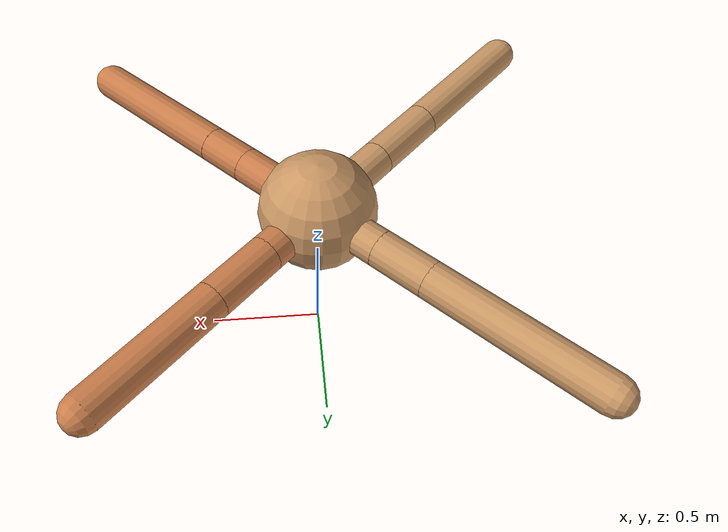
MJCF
<mujoco model="ant">
  <compiler angle="degree" coordinate="local" inertiafromgeom="true" />
  <option integrator="RK4" timestep="0.01" />
  <custom>
    <numeric data="0.0 0.0 0.55 1.0 0.0 0.0 0.0 0.0 1.0 0.0 -1.0 0.0 -1.0 0.0 1.0" name="init_qpos" />
  </custom>
  <default>
    <joint armature="1" damping="1" limited="true" />
    <geom conaffinity="0" condim="3" density="5.0" friction="1.5 0.1 0.1" margin="0.01" rgba="0.8 0.6 0.4 1" />
  </default>
  <worldbody>
    <body name="torso" pos="0 0 0.75">
      <geom name="torso_geom" pos="0 0 0" size="0.25" type="sphere" />

      <body name="front_left_leg" pos="0 0 0">
        <geom fromto="0.0 0.0 0.0 0.2204954303803889 0.2204954303803889 0.0" name="aux_1_geom" size="0.08" type="capsule" rgba=".8 .5 .3 1" />
        <body name="aux_1" pos="0.2204954303803889 0.2204954303803889 0.0">
          <joint axis="0 0 1" name="hip_1" pos="0.0 0.0 0.0" range="-40 40" type="hinge" />
          <geom fromto="0.0 0.0 0.0 0.2046021297252291 0.2046021297252291 0.0" name="left_leg_geom" size="0.08" type="capsule" rgba=".8 .5 .3 1" />
          <body pos="0.2046021297252291 0.2046021297252291 0.0" name="front_left_foot">
            <joint axis="-1 1 0" name="ankle_1" pos="0.0 0.0 0.0" range="30 100" type="hinge" />
            <geom fromto="0.0 0.0 0.0 0.4304403684930478 0.4304403684930478 0.0" name="left_ankle_geom" size="0.08" type="capsule" rgba=".8 .5 .3 1" />
          </body>
        </body>
      </body>
      <body name="front_right_leg" pos="0 0 0">
        <geom fromto="0.0 0.0 0.0 -0.23019728959342345 0.23019728959342345 0.0" name="aux_2_geom" size="0.08" type="capsule" />
        <body name="aux_2" pos="-0.23019728959342345 0.23019728959342345 0.0">
          <joint axis="0 0 1" name="hip_2" pos="0.0 0.0 0.0" range="-40 40" type="hinge" />
          <geom fromto="0.0 0.0 0.0 -0.16825772487446422 0.16825772487446422 0.0" name="right_leg_geom" size="0.08" type="capsule" />
          <body pos="-0.16825772487446422 0.16825772487446422 0.0" name="front_right_foot">
            <joint axis="1 1 0" name="ankle_2" pos="0.0 0.0 0.0" range="-100 -30" type="hinge" />
            <geom fromto="0.0 0.0 0.0 -0.5353641492339032 0.5353641492339032 0.0" name="right_ankle_geom" size="0.08" type="capsule" />
          </body>
        </body>
      </body>
      <body name="left_back_leg" pos="0 0 0">
        <geom fromto="0.0 0.0 0.0 -0.28553923387048524 -0.28553923387048524 0.0" name="aux_3_geom" size="0.08" type="capsule" />
        <body name="aux_3" pos="-0.28553923387048524 -0.28553923387048524 0.0">
          <joint axis="0 0 1" name="hip_3" pos="0.0 0.0 0.0" range="-40 40" type="hinge" />
          <geom fromto="0.0 0.0 0.0 -0.23532495782115284 -0.23532495782115284 0.0" name="back_leg_geom" size="0.08" type="capsule" />
          <body pos="-0.23532495782115284 -0.23532495782115284 0.0" name="left_back_foot">
            <joint axis="-1 1 0" name="ankle_3" pos="0.0 0.0 0.0" range="-100 -30" type="hinge" />
            <geom fromto="0.0 0.0 0.0 -0.4723111038166627 -0.4723111038166627 0.0" name="third_ankle_geom" size="0.08" type="capsule" />
          </body>
        </body>
      </body>
      <body name="right_back_leg" pos="0 0 0">
        <geom fromto="0.0 0.0 0.0 0.28618244010414706 -0.28618244010414706 0.0" name="aux_4_geom" size="0.08" type="capsule" rgba=".8 .5 .3 1" />
        <body name="aux_4" pos="0.28618244010414706 -0.28618244010414706 0.0">
          <joint axis="0 0 1" name="hip_4" pos="0.0 0.0 0.0" range="-40 40" type="hinge" />
          <geom fromto="0.0 0.0 0.0 0.14483749122869613 -0.14483749122869613 0.0" name="rightback_leg_geom" size="0.08" type="capsule" rgba=".8 .5 .3 1" />
          <body pos="0.14483749122869613 -0.14483749122869613 0.0" name="right_back_foot">
            <joint axis="1 1 0" name="ankle_4" pos="0.0 0.0 0.0" range="30 100" type="hinge" />
            <geom fromto="0.0 0.0 0.0 0.49718357854995443 -0.49718357854995443 0.0" name="fourth_ankle_geom" size="0.08" type="capsule" rgba=".8 .5 .3 1" />
          </body>
        </body>
      </body>
    </body>
  </worldbody>
  <actuator>
    <motor ctrllimited="true" ctrlrange="-1.0 1.0" joint="hip_4" gear="150" />
    <motor ctrllimited="true" ctrlrange="-1.0 1.0" joint="ankle_4" gear="150" />
    <motor ctrllimited="true" ctrlrange="-1.0 1.0" joint="hip_1" gear="150" />
    <motor ctrllimited="true" ctrlrange="-1.0 1.0" joint="ankle_1" gear="150" />
    <motor ctrllimited="true" ctrlrange="-1.0 1.0" joint="hip_2" gear="150" />
    <motor ctrllimited="true" ctrlrange="-1.0 1.0" joint="ankle_2" gear="150" />
    <motor ctrllimited="true" ctrlrange="-1.0 1.0" joint="hip_3" gear="150" />
    <motor ctrllimited="true" ctrlrange="-1.0 1.0" joint="ankle_3" gear="150" />
  </actuator>
</mujoco>
